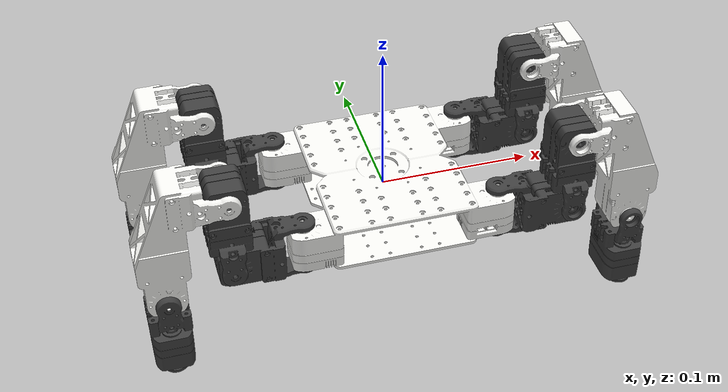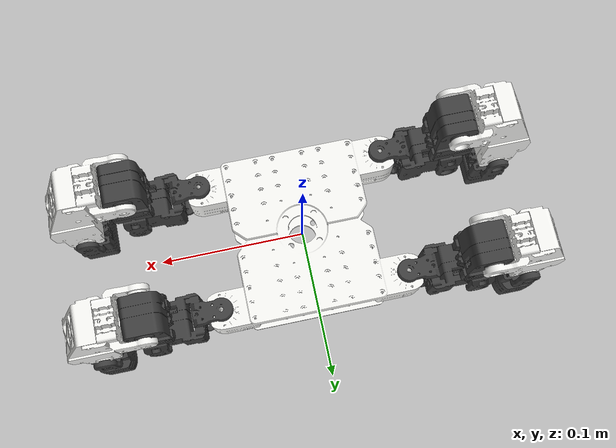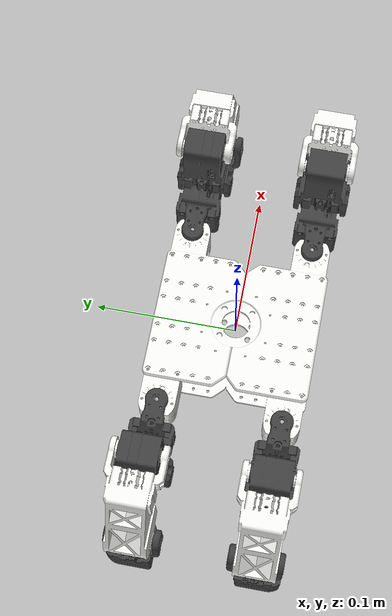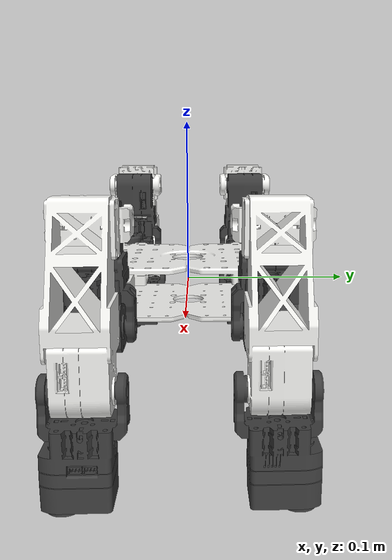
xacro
<?xml version="1.0" ?>
<robot name="excelsus" xmlns:xacro="http://www.ros.org/wiki/xacro">

<xacro:include filename="$(find excelsus_description)/urdf/materials.xacro" />
<xacro:include filename="$(find excelsus_description)/urdf/excelsus.trans" />
<xacro:include filename="$(find excelsus_description)/urdf/excelsus.gazebo" />
<link name="base_link">
  <inertial>
    <origin xyz="-5.030033392761689e-17 -0.00029569010956729944 -0.0007681503352656508" rpy="0 0 0"/>
    <mass value="1.125665971469736"/>
    <inertia ixx="0.001968" iyy="0.002703" izz="0.004398" ixy="-3e-06" iyz="0.0" ixz="-0.0"/>
  </inertial>
  <visual>
    <origin xyz="0 0 0" rpy="0 0 0"/>
    <geometry>
      <mesh filename="package://excelsus_description/meshes/base_link.stl" scale="0.001 0.001 0.001"/>
    </geometry>
    <material name="opaque246246243"/>
  </visual>
  <collision>
    <origin xyz="0 0 0" rpy="0 0 0"/>
    <geometry>
      <mesh filename="package://excelsus_description/meshes/base_link.stl" scale="0.001 0.001 0.001"/>
    </geometry>
  </collision>
</link>

<link name="rear-left-middle-leg_1">
  <inertial>
    <origin xyz="0.03662487154399953 -0.014211363327568671 -0.0346386088514269" rpy="0 0 0"/>
    <mass value="0.4219440312643297"/>
    <inertia ixx="0.000366" iyy="0.000391" izz="9.8e-05" ixy="1e-06" iyz="-0.0" ixz="8.3e-05"/>
  </inertial>
  <visual>
    <origin xyz="-0.1115 -0.056904 -0.051877" rpy="0 0 0"/>
    <geometry>
      <mesh filename="package://excelsus_description/meshes/rear-left-middle-leg_1.stl" scale="0.001 0.001 0.001"/>
    </geometry>
    <material name="opaque246246243"/>
  </visual>
  <collision>
    <origin xyz="-0.1115 -0.056904 -0.051877" rpy="0 0 0"/>
    <geometry>
      <mesh filename="package://excelsus_description/meshes/rear-left-middle-leg_1.stl" scale="0.001 0.001 0.001"/>
    </geometry>
  </collision>
</link>

<link name="rear-left-upper-leg_1">
  <inertial>
    <origin xyz="6.523326043211819e-05 -0.014144819518955569 0.03686031239871101" rpy="0 0 0"/>
    <mass value="0.24064580815886535"/>
    <inertia ixx="8.2e-05" iyy="7.3e-05" izz="3.4e-05" ixy="0.0" iyz="1e-06" ixz="-0.0"/>
  </inertial>
  <visual>
    <origin xyz="-0.1115 -0.057204 0.001123" rpy="0 0 0"/>
    <geometry>
      <mesh filename="package://excelsus_description/meshes/rear-left-upper-leg_1.stl" scale="0.001 0.001 0.001"/>
    </geometry>
    <material name="epx_150_air_baked_with_carbon_m2_m3_l1_3d_printers"/>
  </visual>
  <collision>
    <origin xyz="-0.1115 -0.057204 0.001123" rpy="0 0 0"/>
    <geometry>
      <mesh filename="package://excelsus_description/meshes/rear-left-upper-leg_1.stl" scale="0.001 0.001 0.001"/>
    </geometry>
  </collision>
</link>

<link name="rear-left-base-leg_1">
  <inertial>
    <origin xyz="0.03316988831276137 7.009790016201944e-05 -0.014273316157971089" rpy="0 0 0"/>
    <mass value="0.22271760560239287"/>
    <inertia ixx="3.1e-05" iyy="6.2e-05" izz="5.9e-05" ixy="0.0" iyz="-0.0" ixz="1e-06"/>
  </inertial>
  <visual>
    <origin xyz="-0.0645 -0.043204 -0.013177" rpy="0 0 0"/>
    <geometry>
      <mesh filename="package://excelsus_description/meshes/rear-left-base-leg_1.stl" scale="0.001 0.001 0.001"/>
    </geometry>
    <material name="epx_150_air_baked_with_carbon_m2_m3_l1_3d_printers"/>
  </visual>
  <collision>
    <origin xyz="-0.0645 -0.043204 -0.013177" rpy="0 0 0"/>
    <geometry>
      <mesh filename="package://excelsus_description/meshes/rear-left-base-leg_1.stl" scale="0.001 0.001 0.001"/>
    </geometry>
  </collision>
</link>

<link name="front-left-middle-leg_1">
  <inertial>
    <origin xyz="0.03662487154399953 0.014088636672431903 -0.03463860885142715" rpy="0 0 0"/>
    <mass value="0.4219440312643297"/>
    <inertia ixx="0.000366" iyy="0.000391" izz="9.8e-05" ixy="1e-06" iyz="-0.0" ixz="8.3e-05"/>
  </inertial>
  <visual>
    <origin xyz="-0.1115 0.057796 -0.051877" rpy="0 0 0"/>
    <geometry>
      <mesh filename="package://excelsus_description/meshes/front-left-middle-leg_1.stl" scale="0.001 0.001 0.001"/>
    </geometry>
    <material name="opaque246246243"/>
  </visual>
  <collision>
    <origin xyz="-0.1115 0.057796 -0.051877" rpy="0 0 0"/>
    <geometry>
      <mesh filename="package://excelsus_description/meshes/front-left-middle-leg_1.stl" scale="0.001 0.001 0.001"/>
    </geometry>
  </collision>
</link>

<link name="front-left-upper-leg_1">
  <inertial>
    <origin xyz="6.523326045146383e-05 0.014155180480418326 0.036860312398532415" rpy="0 0 0"/>
    <mass value="0.2406458081588655"/>
    <inertia ixx="8.2e-05" iyy="7.3e-05" izz="3.4e-05" ixy="0.0" iyz="1e-06" ixz="-0.0"/>
  </inertial>
  <visual>
    <origin xyz="-0.1115 0.057796 0.001123" rpy="0 0 0"/>
    <geometry>
      <mesh filename="package://excelsus_description/meshes/front-left-upper-leg_1.stl" scale="0.001 0.001 0.001"/>
    </geometry>
    <material name="epx_150_air_baked_with_carbon_m2_m3_l1_3d_printers"/>
  </visual>
  <collision>
    <origin xyz="-0.1115 0.057796 0.001123" rpy="0 0 0"/>
    <geometry>
      <mesh filename="package://excelsus_description/meshes/front-left-upper-leg_1.stl" scale="0.001 0.001 0.001"/>
    </geometry>
  </collision>
</link>

<link name="front-left-base-leg_1">
  <inertial>
    <origin xyz="0.03316988831276123 7.009790016202638e-05 -0.014273316157970225" rpy="0 0 0"/>
    <mass value="0.2227176056023929"/>
    <inertia ixx="3.1e-05" iyy="6.2e-05" izz="5.9e-05" ixy="0.0" iyz="-0.0" ixz="1e-06"/>
  </inertial>
  <visual>
    <origin xyz="-0.0645 0.043796 -0.013177" rpy="0 0 0"/>
    <geometry>
      <mesh filename="package://excelsus_description/meshes/front-left-base-leg_1.stl" scale="0.001 0.001 0.001"/>
    </geometry>
    <material name="epx_150_air_baked_with_carbon_m2_m3_l1_3d_printers"/>
  </visual>
  <collision>
    <origin xyz="-0.0645 0.043796 -0.013177" rpy="0 0 0"/>
    <geometry>
      <mesh filename="package://excelsus_description/meshes/front-left-base-leg_1.stl" scale="0.001 0.001 0.001"/>
    </geometry>
  </collision>
</link>

<link name="front-right-middle-leg_1">
  <inertial>
    <origin xyz="-0.036624871543999224 0.014211983108469377 -0.03463860885142524" rpy="0 0 0"/>
    <mass value="0.4219440312643297"/>
    <inertia ixx="0.000366" iyy="0.000391" izz="9.8e-05" ixy="1e-06" iyz="0.0" ixz="-8.3e-05"/>
  </inertial>
  <visual>
    <origin xyz="0.1115 0.057496 -0.051877" rpy="0 0 0"/>
    <geometry>
      <mesh filename="package://excelsus_description/meshes/front-right-middle-leg_1.stl" scale="0.001 0.001 0.001"/>
    </geometry>
    <material name="opaque246246243"/>
  </visual>
  <collision>
    <origin xyz="0.1115 0.057496 -0.051877" rpy="0 0 0"/>
    <geometry>
      <mesh filename="package://excelsus_description/meshes/front-right-middle-leg_1.stl" scale="0.001 0.001 0.001"/>
    </geometry>
  </collision>
</link>

<link name="front-right-upper-leg_1">
  <inertial>
    <origin xyz="-6.523326043220146e-05 0.014145439299855359 0.03686031239871269" rpy="0 0 0"/>
    <mass value="0.24064580815886535"/>
    <inertia ixx="8.2e-05" iyy="7.3e-05" izz="3.4e-05" ixy="0.0" iyz="-1e-06" ixz="0.0"/>
  </inertial>
  <visual>
    <origin xyz="0.1115 0.057796 0.001123" rpy="0 0 0"/>
    <geometry>
      <mesh filename="package://excelsus_description/meshes/front-right-upper-leg_1.stl" scale="0.001 0.001 0.001"/>
    </geometry>
    <material name="epx_150_air_baked_with_carbon_m2_m3_l1_3d_printers"/>
  </visual>
  <collision>
    <origin xyz="0.1115 0.057796 0.001123" rpy="0 0 0"/>
    <geometry>
      <mesh filename="package://excelsus_description/meshes/front-right-upper-leg_1.stl" scale="0.001 0.001 0.001"/>
    </geometry>
  </collision>
</link>

<link name="front-right-base-leg_1">
  <inertial>
    <origin xyz="-0.033169888312761464 -6.947811926222985e-05 -0.014273316157969668" rpy="0 0 0"/>
    <mass value="0.22271760560239287"/>
    <inertia ixx="3.1e-05" iyy="6.2e-05" izz="5.9e-05" ixy="0.0" iyz="0.0" ixz="-1e-06"/>
  </inertial>
  <visual>
    <origin xyz="0.0645 0.043796 -0.013177" rpy="0 0 0"/>
    <geometry>
      <mesh filename="package://excelsus_description/meshes/front-right-base-leg_1.stl" scale="0.001 0.001 0.001"/>
    </geometry>
    <material name="epx_150_air_baked_with_carbon_m2_m3_l1_3d_printers"/>
  </visual>
  <collision>
    <origin xyz="0.0645 0.043796 -0.013177" rpy="0 0 0"/>
    <geometry>
      <mesh filename="package://excelsus_description/meshes/front-right-base-leg_1.stl" scale="0.001 0.001 0.001"/>
    </geometry>
  </collision>
</link>

<link name="rear-right-middle-leg_1">
  <inertial>
    <origin xyz="-0.03662487154399986 -0.014088016891530546 -0.034638608851427076" rpy="0 0 0"/>
    <mass value="0.4219440312643297"/>
    <inertia ixx="0.000366" iyy="0.000391" izz="9.8e-05" ixy="1e-06" iyz="0.0" ixz="-8.3e-05"/>
  </inertial>
  <visual>
    <origin xyz="0.1115 -0.057204 -0.051877" rpy="0 0 0"/>
    <geometry>
      <mesh filename="package://excelsus_description/meshes/rear-right-middle-leg_1.stl" scale="0.001 0.001 0.001"/>
    </geometry>
    <material name="opaque246246243"/>
  </visual>
  <collision>
    <origin xyz="0.1115 -0.057204 -0.051877" rpy="0 0 0"/>
    <geometry>
      <mesh filename="package://excelsus_description/meshes/rear-right-middle-leg_1.stl" scale="0.001 0.001 0.001"/>
    </geometry>
  </collision>
</link>

<link name="rear-right-upper-leg_1">
  <inertial>
    <origin xyz="-6.523326043235411e-05 -0.014154560700144606 0.03686031239871122" rpy="0 0 0"/>
    <mass value="0.24064580815886538"/>
    <inertia ixx="8.2e-05" iyy="7.3e-05" izz="3.4e-05" ixy="0.0" iyz="-1e-06" ixz="0.0"/>
  </inertial>
  <visual>
    <origin xyz="0.1115 -0.057204 0.001123" rpy="0 0 0"/>
    <geometry>
      <mesh filename="package://excelsus_description/meshes/rear-right-upper-leg_1.stl" scale="0.001 0.001 0.001"/>
    </geometry>
    <material name="epx_150_air_baked_with_carbon_m2_m3_l1_3d_printers"/>
  </visual>
  <collision>
    <origin xyz="0.1115 -0.057204 0.001123" rpy="0 0 0"/>
    <geometry>
      <mesh filename="package://excelsus_description/meshes/rear-right-upper-leg_1.stl" scale="0.001 0.001 0.001"/>
    </geometry>
  </collision>
</link>

<link name="rear-right-base-leg_1">
  <inertial>
    <origin xyz="-0.033169888312761284 -6.947811926216046e-05 -0.014273316157970999" rpy="0 0 0"/>
    <mass value="0.2227176056023929"/>
    <inertia ixx="3.1e-05" iyy="6.2e-05" izz="5.9e-05" ixy="0.0" iyz="0.0" ixz="-1e-06"/>
  </inertial>
  <visual>
    <origin xyz="0.0645 -0.043204 -0.013177" rpy="0 0 0"/>
    <geometry>
      <mesh filename="package://excelsus_description/meshes/rear-right-base-leg_1.stl" scale="0.001 0.001 0.001"/>
    </geometry>
    <material name="epx_150_air_baked_with_carbon_m2_m3_l1_3d_printers"/>
  </visual>
  <collision>
    <origin xyz="0.0645 -0.043204 -0.013177" rpy="0 0 0"/>
    <geometry>
      <mesh filename="package://excelsus_description/meshes/rear-right-base-leg_1.stl" scale="0.001 0.001 0.001"/>
    </geometry>
  </collision>
</link>

<link name="rear-left-craw_1">
  <inertial>
    <origin xyz="-2.3946243918326893e-06 3.0989044990520354e-07 -0.0021710475035774945" rpy="0 0 0"/>
    <mass value="0.0032125334253544006"/>
    <inertia ixx="0.0" iyy="0.0" izz="0.0" ixy="0.0" iyz="0.0" ixz="-0.0"/>
  </inertial>
  <visual>
    <origin xyz="-0.153864 -0.052804 0.071568" rpy="0 0 0"/>
    <geometry>
      <mesh filename="package://excelsus_description/meshes/rear-left-craw_1.stl" scale="0.001 0.001 0.001"/>
    </geometry>
    <material name="epx_150_air_baked_with_carbon_m2_m3_l1_3d_printers"/>
  </visual>
  <collision>
    <origin xyz="-0.153864 -0.052804 0.071568" rpy="0 0 0"/>
    <geometry>
      <mesh filename="package://excelsus_description/meshes/rear-left-craw_1.stl" scale="0.001 0.001 0.001"/>
    </geometry>
  </collision>
</link>

<link name="rear-left-lower-leg_1">
  <inertial>
    <origin xyz="-5.1416892328209896e-05 -0.011888882526507272 -0.032619644830111594" rpy="0 0 0"/>
    <mass value="0.2261109161031503"/>
    <inertia ixx="6.2e-05" iyy="5e-05" izz="3.5e-05" ixy="0.0" iyz="3e-06" ixz="-0.0"/>
  </inertial>
  <visual>
    <origin xyz="-0.154 -0.056604 0.018623" rpy="0 0 0"/>
    <geometry>
      <mesh filename="package://excelsus_description/meshes/rear-left-lower-leg_1.stl" scale="0.001 0.001 0.001"/>
    </geometry>
    <material name="epx_150_air_baked_with_carbon_m2_m3_l1_3d_printers"/>
  </visual>
  <collision>
    <origin xyz="-0.154 -0.056604 0.018623" rpy="0 0 0"/>
    <geometry>
      <mesh filename="package://excelsus_description/meshes/rear-left-lower-leg_1.stl" scale="0.001 0.001 0.001"/>
    </geometry>
  </collision>
</link>

<link name="front-left-craw_1">
  <inertial>
    <origin xyz="2.1245051555485173e-06 3.098904506060318e-07 -0.0021710027440375868" rpy="0 0 0"/>
    <mass value="0.0032125334253544006"/>
    <inertia ixx="0.0" iyy="0.0" izz="0.0" ixy="-0.0" iyz="0.0" ixz="0.0"/>
  </inertial>
  <visual>
    <origin xyz="-0.153864 0.054596 0.071678" rpy="0 0 0"/>
    <geometry>
      <mesh filename="package://excelsus_description/meshes/front-left-craw_1.stl" scale="0.001 0.001 0.001"/>
    </geometry>
    <material name="epx_150_air_baked_with_carbon_m2_m3_l1_3d_printers"/>
  </visual>
  <collision>
    <origin xyz="-0.153864 0.054596 0.071678" rpy="0 0 0"/>
    <geometry>
      <mesh filename="package://excelsus_description/meshes/front-left-craw_1.stl" scale="0.001 0.001 0.001"/>
    </geometry>
  </collision>
</link>

<link name="front-left-lower-leg_1">
  <inertial>
    <origin xyz="-0.00019048025029058668 -0.01651832705013496 -0.032699923981751075" rpy="0 0 0"/>
    <mass value="0.22611091610315037"/>
    <inertia ixx="6.3e-05" iyy="5e-05" izz="3.5e-05" ixy="-0.0" iyz="-4e-06" ixz="-0.0"/>
  </inertial>
  <visual>
    <origin xyz="-0.154 0.029796 0.018623" rpy="0 0 0"/>
    <geometry>
      <mesh filename="package://excelsus_description/meshes/front-left-lower-leg_1.stl" scale="0.001 0.001 0.001"/>
    </geometry>
    <material name="epx_150_air_baked_with_carbon_m2_m3_l1_3d_printers"/>
  </visual>
  <collision>
    <origin xyz="-0.154 0.029796 0.018623" rpy="0 0 0"/>
    <geometry>
      <mesh filename="package://excelsus_description/meshes/front-left-lower-leg_1.stl" scale="0.001 0.001 0.001"/>
    </geometry>
  </collision>
</link>

<link name="front-right-craw_1">
  <inertial>
    <origin xyz="-2.412367960169526e-06 3.098904509946099e-07 -0.002171047503575649" rpy="0 0 0"/>
    <mass value="0.0032125334253544006"/>
    <inertia ixx="0.0" iyy="0.0" izz="0.0" ixy="0.0" iyz="-0.0" ixz="-0.0"/>
  </inertial>
  <visual>
    <origin xyz="0.153864 0.053396 0.071568" rpy="0 0 0"/>
    <geometry>
      <mesh filename="package://excelsus_description/meshes/front-right-craw_1.stl" scale="0.001 0.001 0.001"/>
    </geometry>
    <material name="epx_150_air_baked_with_carbon_m2_m3_l1_3d_printers"/>
  </visual>
  <collision>
    <origin xyz="0.153864 0.053396 0.071568" rpy="0 0 0"/>
    <geometry>
      <mesh filename="package://excelsus_description/meshes/front-right-craw_1.stl" scale="0.001 0.001 0.001"/>
    </geometry>
  </collision>
</link>

<link name="front-right-lower-leg_1">
  <inertial>
    <origin xyz="5.1416892328154384e-05 0.011889502307408178 -0.03261964483010979" rpy="0 0 0"/>
    <mass value="0.22611091610315034"/>
    <inertia ixx="6.2e-05" iyy="5e-05" izz="3.5e-05" ixy="0.0" iyz="-3e-06" ixz="0.0"/>
  </inertial>
  <visual>
    <origin xyz="0.154 0.057196 0.018623" rpy="0 0 0"/>
    <geometry>
      <mesh filename="package://excelsus_description/meshes/front-right-lower-leg_1.stl" scale="0.001 0.001 0.001"/>
    </geometry>
    <material name="epx_150_air_baked_with_carbon_m2_m3_l1_3d_printers"/>
  </visual>
  <collision>
    <origin xyz="0.154 0.057196 0.018623" rpy="0 0 0"/>
    <geometry>
      <mesh filename="package://excelsus_description/meshes/front-right-lower-leg_1.stl" scale="0.001 0.001 0.001"/>
    </geometry>
  </collision>
</link>

<link name="rear-right-craw_1">
  <inertial>
    <origin xyz="-2.1245051574914076e-06 3.0989045091134315e-07 -0.002171002744037351" rpy="0 0 0"/>
    <mass value="0.0032125334253544006"/>
    <inertia ixx="0.0" iyy="0.0" izz="0.0" ixy="-0.0" iyz="-0.0" ixz="-0.0"/>
  </inertial>
  <visual>
    <origin xyz="0.153864 -0.054004 0.071678" rpy="0 0 0"/>
    <geometry>
      <mesh filename="package://excelsus_description/meshes/rear-right-craw_1.stl" scale="0.001 0.001 0.001"/>
    </geometry>
    <material name="epx_150_air_baked_with_carbon_m2_m3_l1_3d_printers"/>
  </visual>
  <collision>
    <origin xyz="0.153864 -0.054004 0.071678" rpy="0 0 0"/>
    <geometry>
      <mesh filename="package://excelsus_description/meshes/rear-right-craw_1.stl" scale="0.001 0.001 0.001"/>
    </geometry>
  </collision>
</link>

<link name="rear-right-lower-leg_1">
  <inertial>
    <origin xyz="0.0001904802502888936 0.016518946831036524 -0.032699923981750895" rpy="0 0 0"/>
    <mass value="0.22611091610315037"/>
    <inertia ixx="6.3e-05" iyy="5e-05" izz="3.5e-05" ixy="-0.0" iyz="4e-06" ixz="0.0"/>
  </inertial>
  <visual>
    <origin xyz="0.154 -0.029204 0.018623" rpy="0 0 0"/>
    <geometry>
      <mesh filename="package://excelsus_description/meshes/rear-right-lower-leg_1.stl" scale="0.001 0.001 0.001"/>
    </geometry>
    <material name="epx_150_air_baked_with_carbon_m2_m3_l1_3d_printers"/>
  </visual>
  <collision>
    <origin xyz="0.154 -0.029204 0.018623" rpy="0 0 0"/>
    <geometry>
      <mesh filename="package://excelsus_description/meshes/rear-right-lower-leg_1.stl" scale="0.001 0.001 0.001"/>
    </geometry>
  </collision>
</link>

<joint name="RearLeftJoint2" type="continuous">
  <origin xyz="0.0 -0.0003 0.053" rpy="0 0 0"/>
  <parent link="rear-left-upper-leg_1"/>
  <child link="rear-left-middle-leg_1"/>
  <axis xyz="0.0 -1.0 0.0"/>
</joint>

<joint name="RearLeftJoint1" type="continuous">
  <origin xyz="0.047 0.014 -0.0143" rpy="0 0 0"/>
  <parent link="rear-left-base-leg_1"/>
  <child link="rear-left-upper-leg_1"/>
  <axis xyz="0.0 -1.0 -0.0"/>
</joint>

<joint name="RearLeftJoint0" type="continuous">
  <origin xyz="0.0645 0.043204 0.013177" rpy="0 0 0"/>
  <parent link="base_link"/>
  <child link="rear-left-base-leg_1"/>
  <axis xyz="-0.0 -0.0 -1.0"/>
</joint>

<joint name="FrontLeftJoint2" type="continuous">
  <origin xyz="0.0 0.0 0.053" rpy="0 0 0"/>
  <parent link="front-left-upper-leg_1"/>
  <child link="front-left-middle-leg_1"/>
  <axis xyz="0.0 -1.0 -0.0"/>
</joint>

<joint name="FrontLeftJoint1" type="continuous">
  <origin xyz="0.047 -0.014 -0.0143" rpy="0 0 0"/>
  <parent link="front-left-base-leg_1"/>
  <child link="front-left-upper-leg_1"/>
  <axis xyz="-0.0 -1.0 -0.0"/>
</joint>

<joint name="FrontLeftJoint0" type="continuous">
  <origin xyz="0.0645 -0.043796 0.013177" rpy="0 0 0"/>
  <parent link="base_link"/>
  <child link="front-left-base-leg_1"/>
  <axis xyz="-0.0 -0.0 -1.0"/>
</joint>

<joint name="FrontRightJoint2" type="continuous">
  <origin xyz="0.0 0.0003 0.053" rpy="0 0 0"/>
  <parent link="front-right-upper-leg_1"/>
  <child link="front-right-middle-leg_1"/>
  <axis xyz="-0.0 1.0 -0.0"/>
</joint>

<joint name="FrontRightJoint1" type="continuous">
  <origin xyz="-0.047 -0.014 -0.0143" rpy="0 0 0"/>
  <parent link="front-right-base-leg_1"/>
  <child link="front-right-upper-leg_1"/>
  <axis xyz="-0.0 1.0 -0.0"/>
</joint>

<joint name="FrontRightJoint0" type="continuous">
  <origin xyz="-0.0645 -0.043796 0.013177" rpy="0 0 0"/>
  <parent link="base_link"/>
  <child link="front-right-base-leg_1"/>
  <axis xyz="0.0 0.0 -1.0"/>
</joint>

<joint name="RearRightJoint2" type="continuous">
  <origin xyz="0.0 0.0 0.053" rpy="0 0 0"/>
  <parent link="rear-right-upper-leg_1"/>
  <child link="rear-right-middle-leg_1"/>
  <axis xyz="-0.0 1.0 -0.0"/>
</joint>

<joint name="RearRightJoint1" type="continuous">
  <origin xyz="-0.047 0.014 -0.0143" rpy="0 0 0"/>
  <parent link="rear-right-base-leg_1"/>
  <child link="rear-right-upper-leg_1"/>
  <axis xyz="0.0 1.0 -0.0"/>
</joint>

<joint name="RearRightJoint0" type="continuous">
  <origin xyz="-0.0645 0.043204 0.013177" rpy="0 0 0"/>
  <parent link="base_link"/>
  <child link="rear-right-base-leg_1"/>
  <axis xyz="0.0 0.0 -1.0"/>
</joint>

<joint name="RearLeftJoint4" type="continuous">
  <origin xyz="-0.000136 -0.0038 -0.052945" rpy="0 0 0"/>
  <parent link="rear-left-lower-leg_1"/>
  <child link="rear-left-craw_1"/>
  <axis xyz="0.0 -0.0 1.0"/>
</joint>

<joint name="RearLeftJoint3" type="continuous">
  <origin xyz="0.0425 -0.0003 -0.0705" rpy="0 0 0"/>
  <parent link="rear-left-middle-leg_1"/>
  <child link="rear-left-lower-leg_1"/>
  <axis xyz="0.0 -1.0 0.0"/>
</joint>

<joint name="FrontLeftJoint4" type="continuous">
  <origin xyz="-0.000136 -0.0248 -0.053055" rpy="0 0 0"/>
  <parent link="front-left-lower-leg_1"/>
  <child link="front-left-craw_1"/>
  <axis xyz="0.0 0.0 1.0"/>
</joint>

<joint name="FrontLeftJoint3" type="continuous">
  <origin xyz="0.0425 0.028 -0.0705" rpy="0 0 0"/>
  <parent link="front-left-middle-leg_1"/>
  <child link="front-left-lower-leg_1"/>
  <axis xyz="0.0 -1.0 -0.0"/>
</joint>

<joint name="FrontRightJoint4" type="continuous">
  <origin xyz="0.000136 0.0038 -0.052945" rpy="0 0 0"/>
  <parent link="front-right-lower-leg_1"/>
  <child link="front-right-craw_1"/>
  <axis xyz="-0.0 -0.0 1.0"/>
</joint>

<joint name="FrontRightJoint3" type="continuous">
  <origin xyz="-0.0425 0.0003 -0.0705" rpy="0 0 0"/>
  <parent link="front-right-middle-leg_1"/>
  <child link="front-right-lower-leg_1"/>
  <axis xyz="0.0 1.0 0.0"/>
</joint>

<joint name="RearRightJoint4" type="continuous">
  <origin xyz="0.000136 0.0248 -0.053055" rpy="0 0 0"/>
  <parent link="rear-right-lower-leg_1"/>
  <child link="rear-right-craw_1"/>
  <axis xyz="0.0 0.0 1.0"/>
</joint>

<joint name="RearRightJoint3" type="continuous">
  <origin xyz="-0.0425 -0.028 -0.0705" rpy="0 0 0"/>
  <parent link="rear-right-middle-leg_1"/>
  <child link="rear-right-lower-leg_1"/>
  <axis xyz="0.0 1.0 -0.0"/>
</joint>

</robot>

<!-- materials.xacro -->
<robot name="excelsus" xmlns:xacro="http://www.ros.org/wiki/xacro" >

<material name="silver_default">
  <color rgba="0.700 0.700 0.700 1.000"/>
</material>
<material name="opaque246246243">
  <color rgba="0.9647058823529412 0.9647058823529412 0.9529411764705882 1.0"/>
</material>
<material name="epx_150_air_baked_with_carbon_m2_m3_l1_3d_printers">
  <color rgba="0.24705882352941178 0.24705882352941178 0.24705882352941178 1.0"/>
</material>

</robot>

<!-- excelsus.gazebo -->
<robot name="excelsus" xmlns:xacro="http://www.ros.org/wiki/xacro" >

<xacro:property name="body_color" value="Gazebo/Silver" />

<gazebo>
  <plugin name="control" filename="libgazebo_ros_control.so"/>
</gazebo>
<gazebo reference="base_link">
  <material>${body_color}</material>
  <mu1>0.2</mu1>
  <mu2>0.2</mu2>
  <selfCollide>true</selfCollide>
  <gravity>true</gravity>
</gazebo>

<gazebo reference="rear-left-middle-leg_1">
  <material>${body_color}</material>
  <mu1>0.2</mu1>
  <mu2>0.2</mu2>
  <selfCollide>true</selfCollide>
</gazebo>

<gazebo reference="rear-left-upper-leg_1">
  <material>${body_color}</material>
  <mu1>0.2</mu1>
  <mu2>0.2</mu2>
  <selfCollide>true</selfCollide>
</gazebo>

<gazebo reference="rear-left-base-leg_1">
  <material>${body_color}</material>
  <mu1>0.2</mu1>
  <mu2>0.2</mu2>
  <selfCollide>true</selfCollide>
</gazebo>

<gazebo reference="front-left-middle-leg_1">
  <material>${body_color}</material>
  <mu1>0.2</mu1>
  <mu2>0.2</mu2>
  <selfCollide>true</selfCollide>
</gazebo>

<gazebo reference="front-left-upper-leg_1">
  <material>${body_color}</material>
  <mu1>0.2</mu1>
  <mu2>0.2</mu2>
  <selfCollide>true</selfCollide>
</gazebo>

<gazebo reference="front-left-base-leg_1">
  <material>${body_color}</material>
  <mu1>0.2</mu1>
  <mu2>0.2</mu2>
  <selfCollide>true</selfCollide>
</gazebo>

<gazebo reference="front-right-middle-leg_1">
  <material>${body_color}</material>
  <mu1>0.2</mu1>
  <mu2>0.2</mu2>
  <selfCollide>true</selfCollide>
</gazebo>

<gazebo reference="front-right-upper-leg_1">
  <material>${body_color}</material>
  <mu1>0.2</mu1>
  <mu2>0.2</mu2>
  <selfCollide>true</selfCollide>
</gazebo>

<gazebo reference="front-right-base-leg_1">
  <material>${body_color}</material>
  <mu1>0.2</mu1>
  <mu2>0.2</mu2>
  <selfCollide>true</selfCollide>
</gazebo>

<gazebo reference="rear-right-middle-leg_1">
  <material>${body_color}</material>
  <mu1>0.2</mu1>
  <mu2>0.2</mu2>
  <selfCollide>true</selfCollide>
</gazebo>

<gazebo reference="rear-right-upper-leg_1">
  <material>${body_color}</material>
  <mu1>0.2</mu1>
  <mu2>0.2</mu2>
  <selfCollide>true</selfCollide>
</gazebo>

<gazebo reference="rear-right-base-leg_1">
  <material>${body_color}</material>
  <mu1>0.2</mu1>
  <mu2>0.2</mu2>
  <selfCollide>true</selfCollide>
</gazebo>

<gazebo reference="rear-left-craw_1">
  <material>${body_color}</material>
  <mu1>0.2</mu1>
  <mu2>0.2</mu2>
  <selfCollide>true</selfCollide>
</gazebo>

<gazebo reference="rear-left-lower-leg_1">
  <material>${body_color}</material>
  <mu1>0.2</mu1>
  <mu2>0.2</mu2>
  <selfCollide>true</selfCollide>
</gazebo>

<gazebo reference="front-left-craw_1">
  <material>${body_color}</material>
  <mu1>0.2</mu1>
  <mu2>0.2</mu2>
  <selfCollide>true</selfCollide>
</gazebo>

<gazebo reference="front-left-lower-leg_1">
  <material>${body_color}</material>
  <mu1>0.2</mu1>
  <mu2>0.2</mu2>
  <selfCollide>true</selfCollide>
</gazebo>

<gazebo reference="front-right-craw_1">
  <material>${body_color}</material>
  <mu1>0.2</mu1>
  <mu2>0.2</mu2>
  <selfCollide>true</selfCollide>
</gazebo>

<gazebo reference="front-right-lower-leg_1">
  <material>${body_color}</material>
  <mu1>0.2</mu1>
  <mu2>0.2</mu2>
  <selfCollide>true</selfCollide>
</gazebo>

<gazebo reference="rear-right-craw_1">
  <material>${body_color}</material>
  <mu1>0.2</mu1>
  <mu2>0.2</mu2>
  <selfCollide>true</selfCollide>
</gazebo>

<gazebo reference="rear-right-lower-leg_1">
  <material>${body_color}</material>
  <mu1>0.2</mu1>
  <mu2>0.2</mu2>
  <selfCollide>true</selfCollide>
</gazebo>

</robot>
